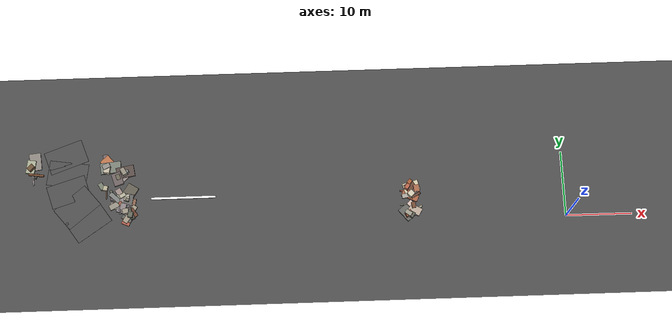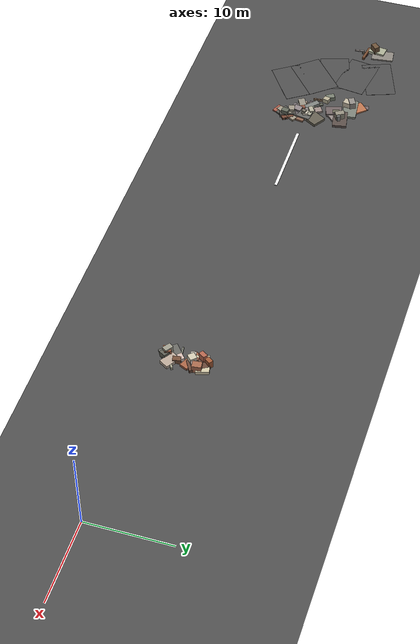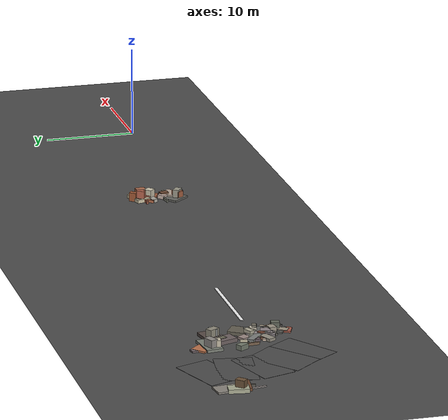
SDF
<sdf version="1.6">
 <world name="navitas_arena">
  <model name="ground_plane">
   <static>true</static>
   <link name="link">
    <collision name="collision">
     <geometry><plane><normal>0 0 1</normal><size>400 400</size></plane></geometry>
     <surface><friction><ode><mu>0.800</mu><mu2>0.800</mu2></ode></friction></surface>
    </collision>
    <visual name="visual">
     <cast_shadows>false</cast_shadows>
     <geometry><plane><normal>0 0 1</normal><size>400 400</size></plane></geometry>
     <material>
      <specular>0.04 0.04 0.04 1</specular>
      <script>
       <uri>file://media/materials/scripts/navitas_asphalt.material</uri>
       <name>Navitas/RealArenaAsphalt</name>
      </script>
     </material>
    </visual>
   </link>
  </model>
  <model name="landing_border_n">
   <static>true</static>
   <pose>-58.000 4.700 0.080 0 0 0.000</pose>
   <link name="link">
    <collision name="col"><geometry><box><size>9.800 0.350 0.080</size></box></geometry></collision>
    <visual name="vis">
     <geometry><box><size>9.800 0.350 0.080</size></box></geometry>
     <material>
      <ambient>0.95 0.95 0.95 1</ambient>
      <diffuse>0.95 0.95 0.95 1</diffuse>
      <specular>0.04 0.04 0.04 1</specular>
     </material>
    </visual>
   </link>
  </model>
  <model name="road_kolay_3_13">
   <static>true</static>
   <pose>-72.366 1.333 0.040 0 0 2.175</pose>
   <link name="link">
    <collision name="col"><geometry><box><size>3.736 6.000 0.020</size></box></geometry></collision>
    <visual name="vis">
     <geometry><box><size>3.736 6.000 0.020</size></box></geometry>
     <material>
      <specular>0.04 0.04 0.04 1</specular>
      <script>
       <uri>file://media/materials/scripts/navitas_asphalt.material</uri>
       <name>Navitas/RealArenaAsphalt</name>
      </script>
     </material>
    </visual>
   </link>
  </model>
  <model name="road_kolay_3_14">
   <static>true</static>
   <pose>-74.146 3.667 0.040 0 0 2.267</pose>
   <link name="link">
    <collision name="col"><geometry><box><size>3.940 6.000 0.020</size></box></geometry></collision>
    <visual name="vis">
     <geometry><box><size>3.940 6.000 0.020</size></box></geometry>
     <material>
      <specular>0.04 0.04 0.04 1</specular>
      <script>
       <uri>file://media/materials/scripts/navitas_asphalt.material</uri>
       <name>Navitas/RealArenaAsphalt</name>
      </script>
     </material>
    </visual>
   </link>
  </model>
  <model name="road_kolay_3_15">
   <static>true</static>
   <pose>-75.534 6.137 0.040 0 0 1.878</pose>
   <link name="link">
    <collision name="col"><geometry><box><size>3.635 6.000 0.020</size></box></geometry></collision>
    <visual name="vis">
     <geometry><box><size>3.635 6.000 0.020</size></box></geometry>
     <material>
      <specular>0.04 0.04 0.04 1</specular>
      <script>
       <uri>file://media/materials/scripts/navitas_asphalt.material</uri>
       <name>Navitas/RealArenaAsphalt</name>
      </script>
     </material>
    </visual>
   </link>
  </model>
  <model name="road_kolay_3_16">
   <static>true</static>
   <pose>-75.733 8.910 0.040 0 0 1.426</pose>
   <link name="link">
    <collision name="col"><geometry><box><size>3.871 6.000 0.020</size></box></geometry></collision>
    <visual name="vis">
     <geometry><box><size>3.871 6.000 0.020</size></box></geometry>
     <material>
      <specular>0.04 0.04 0.04 1</specular>
      <script>
       <uri>file://media/materials/scripts/navitas_asphalt.material</uri>
       <name>Navitas/RealArenaAsphalt</name>
      </script>
     </material>
    </visual>
   </link>
  </model>
  <model name="road_kolay_3_17">
   <static>true</static>
   <pose>-75.998 11.690 0.040 0 0 1.921</pose>
   <link name="link">
    <collision name="col"><geometry><box><size>3.689 6.000 0.020</size></box></geometry></collision>
    <visual name="vis">
     <geometry><box><size>3.689 6.000 0.020</size></box></geometry>
     <material>
      <specular>0.04 0.04 0.04 1</specular>
      <script>
       <uri>file://media/materials/scripts/navitas_asphalt.material</uri>
       <name>Navitas/RealArenaAsphalt</name>
      </script>
     </material>
    </visual>
   </link>
  </model>
  <model name="deb_kolay_4">
   <static>true</static>
   <pose>-69.716 10.018 0.000 0 0 0</pose>
   <link name="link">
    <collision name="col_0">
     <pose>0.603 -0.267 0.147 0.000 0.000 0.111</pose>
     <geometry><box><size>3.118 1.727 0.293</size></box></geometry>
    </collision>
    <visual name="vis_0">
     <pose>0.603 -0.267 0.147 0.000 0.000 0.111</pose>
     <geometry><box><size>3.118 1.727 0.293</size></box></geometry>
     <material>
      <ambient>0.44 0.47 0.42 1</ambient>
      <diffuse>0.48 0.50 0.46 1</diffuse>
      <specular>0.05 0.05 0.045 1</specular>
     </material>
    </visual>
    <collision name="col_1">
     <pose>-0.084 0.573 0.085 0.000 0.000 1.760</pose>
     <geometry><box><size>2.648 0.722 0.170</size></box></geometry>
    </collision>
    <visual name="vis_1">
     <pose>-0.084 0.573 0.085 0.000 0.000 1.760</pose>
     <geometry><box><size>2.648 0.722 0.170</size></box></geometry>
     <material>
      <ambient>0.41 0.36 0.37 1</ambient>
      <diffuse>0.44 0.39 0.40 1</diffuse>
      <specular>0.05 0.05 0.045 1</specular>
     </material>
    </visual>
    <collision name="col_2">
     <pose>0.094 -0.732 0.476 0.000 0.000 1.403</pose>
     <geometry><box><size>0.981 0.908 0.953</size></box></geometry>
    </collision>
    <visual name="vis_2">
     <pose>0.094 -0.732 0.476 0.000 0.000 1.403</pose>
     <geometry><box><size>0.981 0.908 0.953</size></box></geometry>
     <material>
      <ambient>0.69 0.66 0.58 1</ambient>
      <diffuse>0.75 0.71 0.63 1</diffuse>
      <specular>0.05 0.05 0.045 1</specular>
     </material>
    </visual>
    <collision name="col_3">
     <pose>0.035 -0.224 0.551 0.000 0.000 0.448</pose>
     <geometry><box><size>1.141 0.742 1.102</size></box></geometry>
    </collision>
    <visual name="vis_3">
     <pose>0.035 -0.224 0.551 0.000 0.000 0.448</pose>
     <geometry><box><size>1.141 0.742 1.102</size></box></geometry>
     <material>
      <ambient>0.52 0.50 0.48 1</ambient>
      <diffuse>0.56 0.54 0.52 1</diffuse>
      <specular>0.05 0.05 0.045 1</specular>
     </material>
    </visual>
    <collision name="col_4">
     <pose>0.040 0.656 0.092 0.000 0.000 0.731</pose>
     <geometry><box><size>1.611 1.572 0.185</size></box></geometry>
    </collision>
    <visual name="vis_4">
     <pose>0.040 0.656 0.092 0.000 0.000 0.731</pose>
     <geometry><box><size>1.611 1.572 0.185</size></box></geometry>
     <material>
      <ambient>0.67 0.42 0.28 1</ambient>
      <diffuse>0.73 0.45 0.30 1</diffuse>
      <specular>0.05 0.05 0.045 1</specular>
     </material>
    </visual>
   </link>
  </model>
  <model name="deb_kolay_11">
   <static>true</static>
   <pose>-69.883 6.349 0.000 0 0 0</pose>
   <link name="link">
    <collision name="col_0">
     <pose>0.881 -0.354 0.084 0.000 0.000 0.562</pose>
     <geometry><box><size>0.395 0.433 0.168</size></box></geometry>
    </collision>
    <visual name="vis_0">
     <pose>0.881 -0.354 0.084 0.000 0.000 0.562</pose>
     <geometry><box><size>0.395 0.433 0.168</size></box></geometry>
     <material>
      <ambient>0.34 0.35 0.31 1</ambient>
      <diffuse>0.37 0.38 0.33 1</diffuse>
      <specular>0.05 0.05 0.045 1</specular>
     </material>
    </visual>
    <collision name="col_1">
     <pose>0.043 0.121 0.295 0.000 0.000 1.317</pose>
     <geometry><box><size>0.730 0.661 0.590</size></box></geometry>
    </collision>
    <visual name="vis_1">
     <pose>0.043 0.121 0.295 0.000 0.000 1.317</pose>
     <geometry><box><size>0.730 0.661 0.590</size></box></geometry>
     <material>
      <ambient>0.65 0.62 0.53 1</ambient>
      <diffuse>0.70 0.67 0.57 1</diffuse>
      <specular>0.05 0.05 0.045 1</specular>
     </material>
    </visual>
    <collision name="col_2">
     <pose>-0.575 0.443 0.264 0.000 0.000 2.103</pose>
     <geometry><box><size>1.056 0.717 0.528</size></box></geometry>
    </collision>
    <visual name="vis_2">
     <pose>-0.575 0.443 0.264 0.000 0.000 2.103</pose>
     <geometry><box><size>1.056 0.717 0.528</size></box></geometry>
     <material>
      <ambient>0.43 0.45 0.39 1</ambient>
      <diffuse>0.46 0.49 0.43 1</diffuse>
      <specular>0.05 0.05 0.045 1</specular>
     </material>
    </visual>
    <collision name="col_3">
     <pose>0.129 -0.584 0.148 0.000 0.000 1.647</pose>
     <geometry><box><size>1.867 0.154 0.296</size></box></geometry>
    </collision>
    <visual name="vis_3">
     <pose>0.129 -0.584 0.148 0.000 0.000 1.647</pose>
     <geometry><box><size>1.867 0.154 0.296</size></box></geometry>
     <material>
      <ambient>0.44 0.36 0.28 1</ambient>
      <diffuse>0.47 0.38 0.30 1</diffuse>
      <specular>0.05 0.05 0.045 1</specular>
     </material>
    </visual>
   </link>
  </model>
  <model name="deb_kolay_35">
   <static>true</static>
   <pose>-67.642 5.034 0.000 0 0 0</pose>
   <link name="link">
    <collision name="col_0">
     <pose>1.045 -0.105 0.263 0.000 0.000 1.454</pose>
     <geometry><box><size>1.021 0.797 0.525</size></box></geometry>
    </collision>
    <visual name="vis_0">
     <pose>1.045 -0.105 0.263 0.000 0.000 1.454</pose>
     <geometry><box><size>1.021 0.797 0.525</size></box></geometry>
     <material>
      <ambient>0.61 0.60 0.54 1</ambient>
      <diffuse>0.66 0.65 0.58 1</diffuse>
      <specular>0.05 0.05 0.045 1</specular>
     </material>
    </visual>
    <collision name="col_1">
     <pose>0.380 -0.092 0.130 0.000 0.000 2.094</pose>
     <geometry><box><size>3.156 0.882 0.260</size></box></geometry>
    </collision>
    <visual name="vis_1">
     <pose>0.380 -0.092 0.130 0.000 0.000 2.094</pose>
     <geometry><box><size>3.156 0.882 0.260</size></box></geometry>
     <material>
      <ambient>0.56 0.50 0.48 1</ambient>
      <diffuse>0.61 0.54 0.52 1</diffuse>
      <specular>0.05 0.05 0.045 1</specular>
     </material>
    </visual>
    <collision name="col_2">
     <pose>-0.669 -0.147 0.192 0.000 0.000 2.404</pose>
     <geometry><box><size>2.144 0.695 0.383</size></box></geometry>
    </collision>
    <visual name="vis_2">
     <pose>-0.669 -0.147 0.192 0.000 0.000 2.404</pose>
     <geometry><box><size>2.144 0.695 0.383</size></box></geometry>
     <material>
      <ambient>0.46 0.46 0.45 1</ambient>
      <diffuse>0.49 0.50 0.49 1</diffuse>
      <specular>0.05 0.05 0.045 1</specular>
     </material>
    </visual>
    <collision name="col_3">
     <pose>-0.648 -0.744 0.145 0.000 0.000 0.755</pose>
     <geometry><box><size>1.166 0.281 0.291</size></box></geometry>
    </collision>
    <visual name="vis_3">
     <pose>-0.648 -0.744 0.145 0.000 0.000 0.755</pose>
     <geometry><box><size>1.166 0.281 0.291</size></box></geometry>
     <material>
      <ambient>0.46 0.33 0.25 1</ambient>
      <diffuse>0.50 0.35 0.27 1</diffuse>
      <specular>0.05 0.05 0.045 1</specular>
     </material>
    </visual>
    <collision name="col_4">
     <pose>-0.051 -0.750 0.153 0.000 0.000 2.352</pose>
     <geometry><box><size>0.211 0.249 0.307</size></box></geometry>
    </collision>
    <visual name="vis_4">
     <pose>-0.051 -0.750 0.153 0.000 0.000 2.352</pose>
     <geometry><box><size>0.211 0.249 0.307</size></box></geometry>
     <material>
      <ambient>0.52 0.51 0.47 1</ambient>
      <diffuse>0.56 0.55 0.51 1</diffuse>
      <specular>0.05 0.05 0.045 1</specular>
     </material>
    </visual>
    <collision name="col_5">
     <pose>0.464 0.165 0.354 0.000 0.000 0.512</pose>
     <geometry><box><size>0.954 0.551 0.708</size></box></geometry>
    </collision>
    <visual name="vis_5">
     <pose>0.464 0.165 0.354 0.000 0.000 0.512</pose>
     <geometry><box><size>0.954 0.551 0.708</size></box></geometry>
     <material>
      <ambient>0.64 0.63 0.55 1</ambient>
      <diffuse>0.70 0.68 0.60 1</diffuse>
      <specular>0.05 0.05 0.045 1</specular>
     </material>
    </visual>
   </link>
  </model>
  <model name="deb_kolay_45">
   <static>true</static>
   <pose>-81.275 10.694 0.000 0 0 0</pose>
   <link name="link">
    <collision name="col_0">
     <pose>-0.034 -0.451 0.203 0.000 0.000 1.432</pose>
     <geometry><box><size>2.068 1.308 0.407</size></box></geometry>
    </collision>
    <visual name="vis_0">
     <pose>-0.034 -0.451 0.203 0.000 0.000 1.432</pose>
     <geometry><box><size>2.068 1.308 0.407</size></box></geometry>
     <material>
      <ambient>0.61 0.62 0.53 1</ambient>
      <diffuse>0.66 0.67 0.57 1</diffuse>
      <specular>0.05 0.05 0.045 1</specular>
     </material>
    </visual>
    <collision name="col_1">
     <pose>-0.039 -0.198 0.112 0.000 0.000 3.388</pose>
     <geometry><box><size>0.448 0.173 0.225</size></box></geometry>
    </collision>
    <visual name="vis_1">
     <pose>-0.039 -0.198 0.112 0.000 0.000 3.388</pose>
     <geometry><box><size>0.448 0.173 0.225</size></box></geometry>
     <material>
      <ambient>0.65 0.38 0.26 1</ambient>
      <diffuse>0.70 0.41 0.28 1</diffuse>
      <specular>0.05 0.05 0.045 1</specular>
     </material>
    </visual>
    <collision name="col_2">
     <pose>0.090 -0.763 0.578 0.000 0.000 2.367</pose>
     <geometry><box><size>0.718 0.993 1.157</size></box></geometry>
    </collision>
    <visual name="vis_2">
     <pose>0.090 -0.763 0.578 0.000 0.000 2.367</pose>
     <geometry><box><size>0.718 0.993 1.157</size></box></geometry>
     <material>
      <ambient>0.39 0.30 0.20 1</ambient>
      <diffuse>0.42 0.32 0.22 1</diffuse>
      <specular>0.05 0.05 0.045 1</specular>
     </material>
    </visual>
    <collision name="col_3">
     <pose>0.582 0.378 0.089 0.000 0.000 1.688</pose>
     <geometry><box><size>2.729 1.755 0.177</size></box></geometry>
    </collision>
    <visual name="vis_3">
     <pose>0.582 0.378 0.089 0.000 0.000 1.688</pose>
     <geometry><box><size>2.729 1.755 0.177</size></box></geometry>
     <material>
      <ambient>0.50 0.48 0.46 1</ambient>
      <diffuse>0.54 0.52 0.49 1</diffuse>
      <specular>0.05 0.05 0.045 1</specular>
     </material>
    </visual>
    <collision name="col_4">
     <pose>0.379 -0.234 0.142 0.000 0.000 1.449</pose>
     <geometry><box><size>0.317 0.171 0.283</size></box></geometry>
    </collision>
    <visual name="vis_4">
     <pose>0.379 -0.234 0.142 0.000 0.000 1.449</pose>
     <geometry><box><size>0.317 0.171 0.283</size></box></geometry>
     <material>
      <ambient>0.31 0.28 0.27 1</ambient>
      <diffuse>0.33 0.31 0.29 1</diffuse>
      <specular>0.05 0.05 0.045 1</specular>
     </material>
    </visual>
    <collision name="col_5">
     <pose>-0.071 -0.702 0.116 0.000 0.000 0.861</pose>
     <geometry><box><size>0.483 0.188 0.232</size></box></geometry>
    </collision>
    <visual name="vis_5">
     <pose>-0.071 -0.702 0.116 0.000 0.000 0.861</pose>
     <geometry><box><size>0.483 0.188 0.232</size></box></geometry>
     <material>
      <ambient>0.61 0.37 0.25 1</ambient>
      <diffuse>0.66 0.40 0.27 1</diffuse>
      <specular>0.05 0.05 0.045 1</specular>
     </material>
    </visual>
   </link>
  </model>
  <model name="deb_kolay_80">
   <static>true</static>
   <pose>-68.226 4.597 0.000 0 0 0</pose>
   <link name="link">
    <collision name="col_0">
     <pose>-0.559 -0.534 0.121 0.000 0.000 2.882</pose>
     <geometry><box><size>0.340 0.316 0.242</size></box></geometry>
    </collision>
    <visual name="vis_0">
     <pose>-0.559 -0.534 0.121 0.000 0.000 2.882</pose>
     <geometry><box><size>0.340 0.316 0.242</size></box></geometry>
     <material>
      <ambient>0.74 0.67 0.60 1</ambient>
      <diffuse>0.80 0.72 0.65 1</diffuse>
      <specular>0.05 0.05 0.045 1</specular>
     </material>
    </visual>
    <collision name="col_1">
     <pose>0.769 -0.065 0.190 0.000 0.000 2.674</pose>
     <geometry><box><size>1.890 1.156 0.379</size></box></geometry>
    </collision>
    <visual name="vis_1">
     <pose>0.769 -0.065 0.190 0.000 0.000 2.674</pose>
     <geometry><box><size>1.890 1.156 0.379</size></box></geometry>
     <material>
      <ambient>0.50 0.51 0.46 1</ambient>
      <diffuse>0.54 0.55 0.49 1</diffuse>
      <specular>0.05 0.05 0.045 1</specular>
     </material>
    </visual>
    <collision name="col_2">
     <pose>0.422 -0.562 0.161 0.000 0.000 3.612</pose>
     <geometry><box><size>3.061 0.831 0.321</size></box></geometry>
    </collision>
    <visual name="vis_2">
     <pose>0.422 -0.562 0.161 0.000 0.000 3.612</pose>
     <geometry><box><size>3.061 0.831 0.321</size></box></geometry>
     <material>
      <ambient>0.54 0.52 0.47 1</ambient>
      <diffuse>0.58 0.56 0.51 1</diffuse>
      <specular>0.05 0.05 0.045 1</specular>
     </material>
    </visual>
    <collision name="col_3">
     <pose>0.502 0.212 0.166 0.000 0.000 3.066</pose>
     <geometry><box><size>2.629 0.723 0.333</size></box></geometry>
    </collision>
    <visual name="vis_3">
     <pose>0.502 0.212 0.166 0.000 0.000 3.066</pose>
     <geometry><box><size>2.629 0.723 0.333</size></box></geometry>
     <material>
      <ambient>0.36 0.31 0.33 1</ambient>
      <diffuse>0.39 0.34 0.36 1</diffuse>
      <specular>0.05 0.05 0.045 1</specular>
     </material>
    </visual>
    <collision name="col_4">
     <pose>-0.199 -0.501 0.079 0.000 0.000 2.362</pose>
     <geometry><box><size>0.231 0.197 0.158</size></box></geometry>
    </collision>
    <visual name="vis_4">
     <pose>-0.199 -0.501 0.079 0.000 0.000 2.362</pose>
     <geometry><box><size>0.231 0.197 0.158</size></box></geometry>
     <material>
      <ambient>0.72 0.65 0.60 1</ambient>
      <diffuse>0.78 0.70 0.65 1</diffuse>
      <specular>0.05 0.05 0.045 1</specular>
     </material>
    </visual>
    <collision name="col_5">
     <pose>0.858 -0.370 0.153 0.000 0.000 2.899</pose>
     <geometry><box><size>0.352 0.319 0.306</size></box></geometry>
    </collision>
    <visual name="vis_5">
     <pose>0.858 -0.370 0.153 0.000 0.000 2.899</pose>
     <geometry><box><size>0.352 0.319 0.306</size></box></geometry>
     <material>
      <ambient>0.44 0.43 0.43 1</ambient>
      <diffuse>0.48 0.47 0.46 1</diffuse>
      <specular>0.05 0.05 0.045 1</specular>
     </material>
    </visual>
   </link>
  </model>
  <model name="deb_kolay_83">
   <static>true</static>
   <pose>-66.130 1.631 0.000 0 0 0</pose>
   <link name="link">
    <collision name="col_0">
     <pose>-0.219 0.160 0.085 0.000 0.000 1.167</pose>
     <geometry><box><size>2.376 1.264 0.170</size></box></geometry>
    </collision>
    <visual name="vis_0">
     <pose>-0.219 0.160 0.085 0.000 0.000 1.167</pose>
     <geometry><box><size>2.376 1.264 0.170</size></box></geometry>
     <material>
      <ambient>0.61 0.34 0.27 1</ambient>
      <diffuse>0.66 0.36 0.29 1</diffuse>
      <specular>0.05 0.05 0.045 1</specular>
     </material>
    </visual>
    <collision name="col_1">
     <pose>0.050 0.714 0.122 0.000 0.000 1.001</pose>
     <geometry><box><size>2.991 0.767 0.244</size></box></geometry>
    </collision>
    <visual name="vis_1">
     <pose>0.050 0.714 0.122 0.000 0.000 1.001</pose>
     <geometry><box><size>2.991 0.767 0.244</size></box></geometry>
     <material>
      <ambient>0.57 0.54 0.47 1</ambient>
      <diffuse>0.62 0.58 0.51 1</diffuse>
      <specular>0.05 0.05 0.045 1</specular>
     </material>
    </visual>
    <collision name="col_2">
     <pose>-0.114 0.520 0.089 0.000 0.000 1.006</pose>
     <geometry><box><size>1.839 1.673 0.179</size></box></geometry>
    </collision>
    <visual name="vis_2">
     <pose>-0.114 0.520 0.089 0.000 0.000 1.006</pose>
     <geometry><box><size>1.839 1.673 0.179</size></box></geometry>
     <material>
      <ambient>0.34 0.34 0.32 1</ambient>
      <diffuse>0.37 0.37 0.35 1</diffuse>
      <specular>0.05 0.05 0.045 1</specular>
     </material>
    </visual>
    <collision name="col_3">
     <pose>0.169 0.531 0.420 0.000 0.000 1.391</pose>
     <geometry><box><size>0.859 0.712 0.840</size></box></geometry>
    </collision>
    <visual name="vis_3">
     <pose>0.169 0.531 0.420 0.000 0.000 1.391</pose>
     <geometry><box><size>0.859 0.712 0.840</size></box></geometry>
     <material>
      <ambient>0.35 0.37 0.33 1</ambient>
      <diffuse>0.38 0.40 0.35 1</diffuse>
      <specular>0.05 0.05 0.045 1</specular>
     </material>
    </visual>
    <collision name="col_4">
     <pose>-0.306 0.485 0.110 0.000 0.000 2.636</pose>
     <geometry><box><size>1.419 0.285 0.220</size></box></geometry>
    </collision>
    <visual name="vis_4">
     <pose>-0.306 0.485 0.110 0.000 0.000 2.636</pose>
     <geometry><box><size>1.419 0.285 0.220</size></box></geometry>
     <material>
      <ambient>0.38 0.38 0.37 1</ambient>
      <diffuse>0.41 0.42 0.40 1</diffuse>
      <specular>0.05 0.05 0.045 1</specular>
     </material>
    </visual>
    <collision name="col_5">
     <pose>0.165 0.816 0.199 0.000 0.000 1.971</pose>
     <geometry><box><size>2.013 0.653 0.397</size></box></geometry>
    </collision>
    <visual name="vis_5">
     <pose>0.165 0.816 0.199 0.000 0.000 1.971</pose>
     <geometry><box><size>2.013 0.653 0.397</size></box></geometry>
     <material>
      <ambient>0.28 0.27 0.25 1</ambient>
      <diffuse>0.30 0.29 0.27 1</diffuse>
      <specular>0.05 0.05 0.045 1</specular>
     </material>
    </visual>
   </link>
  </model>
  <model name="deb_kolay_109">
   <static>true</static>
   <pose>-66.497 4.869 0.000 0 0 0</pose>
   <link name="link">
    <collision name="col_0">
     <pose>0.081 -0.403 0.459 0.000 0.000 1.261</pose>
     <geometry><box><size>0.483 0.446 0.919</size></box></geometry>
    </collision>
    <visual name="vis_0">
     <pose>0.081 -0.403 0.459 0.000 0.000 1.261</pose>
     <geometry><box><size>0.483 0.446 0.919</size></box></geometry>
     <material>
      <ambient>0.44 0.42 0.37 1</ambient>
      <diffuse>0.47 0.45 0.40 1</diffuse>
      <specular>0.05 0.05 0.045 1</specular>
     </material>
    </visual>
    <collision name="col_1">
     <pose>0.026 -0.227 0.334 0.000 0.000 1.727</pose>
     <geometry><box><size>0.627 0.661 0.669</size></box></geometry>
    </collision>
    <visual name="vis_1">
     <pose>0.026 -0.227 0.334 0.000 0.000 1.727</pose>
     <geometry><box><size>0.627 0.661 0.669</size></box></geometry>
     <material>
      <ambient>0.73 0.70 0.63 1</ambient>
      <diffuse>0.79 0.76 0.69 1</diffuse>
      <specular>0.05 0.05 0.045 1</specular>
     </material>
    </visual>
    <collision name="col_2">
     <pose>0.302 0.797 0.177 0.000 0.000 1.015</pose>
     <geometry><box><size>2.523 1.793 0.353</size></box></geometry>
    </collision>
    <visual name="vis_2">
     <pose>0.302 0.797 0.177 0.000 0.000 1.015</pose>
     <geometry><box><size>2.523 1.793 0.353</size></box></geometry>
     <material>
      <ambient>0.36 0.34 0.30 1</ambient>
      <diffuse>0.39 0.37 0.32 1</diffuse>
      <specular>0.05 0.05 0.045 1</specular>
     </material>
    </visual>
    <collision name="col_3">
     <pose>-0.329 -0.719 0.192 0.000 0.000 1.467</pose>
     <geometry><box><size>2.709 1.691 0.385</size></box></geometry>
    </collision>
    <visual name="vis_3">
     <pose>-0.329 -0.719 0.192 0.000 0.000 1.467</pose>
     <geometry><box><size>2.709 1.691 0.385</size></box></geometry>
     <material>
      <ambient>0.52 0.49 0.49 1</ambient>
      <diffuse>0.56 0.53 0.53 1</diffuse>
      <specular>0.05 0.05 0.045 1</specular>
     </material>
    </visual>
    <collision name="col_4">
     <pose>-0.439 0.081 0.129 0.000 0.000 0.830</pose>
     <geometry><box><size>2.571 0.922 0.259</size></box></geometry>
    </collision>
    <visual name="vis_4">
     <pose>-0.439 0.081 0.129 0.000 0.000 0.830</pose>
     <geometry><box><size>2.571 0.922 0.259</size></box></geometry>
     <material>
      <ambient>0.39 0.29 0.21 1</ambient>
      <diffuse>0.43 0.31 0.22 1</diffuse>
      <specular>0.05 0.05 0.045 1</specular>
     </material>
    </visual>
    <collision name="col_5">
     <pose>0.554 -0.537 0.112 0.000 0.000 0.234</pose>
     <geometry><box><size>0.345 0.386 0.223</size></box></geometry>
    </collision>
    <visual name="vis_5">
     <pose>0.554 -0.537 0.112 0.000 0.000 0.234</pose>
     <geometry><box><size>0.345 0.386 0.223</size></box></geometry>
     <material>
      <ambient>0.45 0.45 0.44 1</ambient>
      <diffuse>0.48 0.48 0.47 1</diffuse>
      <specular>0.05 0.05 0.045 1</specular>
     </material>
    </visual>
    <collision name="col_6">
     <pose>0.013 -0.249 0.074 0.000 0.000 1.788</pose>
     <geometry><box><size>1.033 0.271 0.148</size></box></geometry>
    </collision>
    <visual name="vis_6">
     <pose>0.013 -0.249 0.074 0.000 0.000 1.788</pose>
     <geometry><box><size>1.033 0.271 0.148</size></box></geometry>
     <material>
      <ambient>0.75 0.73 0.64 1</ambient>
      <diffuse>0.80 0.79 0.69 1</diffuse>
      <specular>0.05 0.05 0.045 1</specular>
     </material>
    </visual>
   </link>
  </model>
  <model name="deb_kolay_115">
   <static>true</static>
   <pose>-80.129 7.894 0.000 0 0 0</pose>
   <link name="link">
    <collision name="col_0">
     <pose>-0.101 1.081 0.079 0.000 0.000 1.300</pose>
     <geometry><box><size>0.365 0.366 0.159</size></box></geometry>
    </collision>
    <visual name="vis_0">
     <pose>-0.101 1.081 0.079 0.000 0.000 1.300</pose>
     <geometry><box><size>0.365 0.366 0.159</size></box></geometry>
     <material>
      <ambient>0.41 0.26 0.23 1</ambient>
      <diffuse>0.44 0.28 0.25 1</diffuse>
      <specular>0.05 0.05 0.045 1</specular>
     </material>
    </visual>
    <collision name="col_1">
     <pose>-0.399 0.698 0.141 0.000 0.000 1.487</pose>
     <geometry><box><size>0.464 0.184 0.281</size></box></geometry>
    </collision>
    <visual name="vis_1">
     <pose>-0.399 0.698 0.141 0.000 0.000 1.487</pose>
     <geometry><box><size>0.464 0.184 0.281</size></box></geometry>
     <material>
      <ambient>0.31 0.30 0.28 1</ambient>
      <diffuse>0.34 0.33 0.30 1</diffuse>
      <specular>0.05 0.05 0.045 1</specular>
     </material>
    </visual>
    <collision name="col_2">
     <pose>-0.858 0.574 0.064 0.000 0.000 1.682</pose>
     <geometry><box><size>2.276 0.190 0.128</size></box></geometry>
    </collision>
    <visual name="vis_2">
     <pose>-0.858 0.574 0.064 0.000 0.000 1.682</pose>
     <geometry><box><size>2.276 0.190 0.128</size></box></geometry>
     <material>
      <ambient>0.54 0.51 0.50 1</ambient>
      <diffuse>0.58 0.55 0.54 1</diffuse>
      <specular>0.05 0.05 0.045 1</specular>
     </material>
    </visual>
    <collision name="col_3">
     <pose>-0.364 1.061 0.153 0.000 0.000 -0.136</pose>
     <geometry><box><size>2.303 0.316 0.306</size></box></geometry>
    </collision>
    <visual name="vis_3">
     <pose>-0.364 1.061 0.153 0.000 0.000 -0.136</pose>
     <geometry><box><size>2.303 0.316 0.306</size></box></geometry>
     <material>
      <ambient>0.41 0.26 0.17 1</ambient>
      <diffuse>0.44 0.28 0.18 1</diffuse>
      <specular>0.05 0.05 0.045 1</specular>
     </material>
    </visual>
   </link>
  </model>
  <model name="deb_kolay_160">
   <static>true</static>
   <pose>-66.598 2.521 0.000 0 0 0</pose>
   <link name="link">
    <collision name="col_0">
     <pose>-0.560 0.940 0.251 0.000 0.000 0.337</pose>
     <geometry><box><size>0.752 0.691 0.501</size></box></geometry>
    </collision>
    <visual name="vis_0">
     <pose>-0.560 0.940 0.251 0.000 0.000 0.337</pose>
     <geometry><box><size>0.752 0.691 0.501</size></box></geometry>
     <material>
      <ambient>0.46 0.48 0.45 1</ambient>
      <diffuse>0.49 0.51 0.48 1</diffuse>
      <specular>0.05 0.05 0.045 1</specular>
     </material>
    </visual>
    <collision name="col_1">
     <pose>-0.132 0.234 0.347 0.000 0.000 0.173</pose>
     <geometry><box><size>0.901 0.760 0.694</size></box></geometry>
    </collision>
    <visual name="vis_1">
     <pose>-0.132 0.234 0.347 0.000 0.000 0.173</pose>
     <geometry><box><size>0.901 0.760 0.694</size></box></geometry>
     <material>
      <ambient>0.56 0.54 0.48 1</ambient>
      <diffuse>0.61 0.58 0.52 1</diffuse>
      <specular>0.05 0.05 0.045 1</specular>
     </material>
    </visual>
    <collision name="col_2">
     <pose>0.862 -0.093 0.139 0.000 0.000 2.160</pose>
     <geometry><box><size>1.475 1.119 0.278</size></box></geometry>
    </collision>
    <visual name="vis_2">
     <pose>0.862 -0.093 0.139 0.000 0.000 2.160</pose>
     <geometry><box><size>1.475 1.119 0.278</size></box></geometry>
     <material>
      <ambient>0.40 0.25 0.18 1</ambient>
      <diffuse>0.44 0.27 0.20 1</diffuse>
      <specular>0.05 0.05 0.045 1</specular>
     </material>
    </visual>
    <collision name="col_3">
     <pose>-0.995 -0.010 0.094 0.000 0.000 1.557</pose>
     <geometry><box><size>0.204 0.325 0.188</size></box></geometry>
    </collision>
    <visual name="vis_3">
     <pose>-0.995 -0.010 0.094 0.000 0.000 1.557</pose>
     <geometry><box><size>0.204 0.325 0.188</size></box></geometry>
     <material>
      <ambient>0.37 0.36 0.33 1</ambient>
      <diffuse>0.40 0.39 0.36 1</diffuse>
      <specular>0.05 0.05 0.045 1</specular>
     </material>
    </visual>
    <collision name="col_4">
     <pose>0.684 -0.065 0.144 0.000 0.000 0.265</pose>
     <geometry><box><size>1.246 0.190 0.289</size></box></geometry>
    </collision>
    <visual name="vis_4">
     <pose>0.684 -0.065 0.144 0.000 0.000 0.265</pose>
     <geometry><box><size>1.246 0.190 0.289</size></box></geometry>
     <material>
      <ambient>0.47 0.33 0.25 1</ambient>
      <diffuse>0.51 0.36 0.27 1</diffuse>
      <specular>0.05 0.05 0.045 1</specular>
     </material>
    </visual>
    <collision name="col_5">
     <pose>0.402 0.088 0.203 0.000 0.000 1.743</pose>
     <geometry><box><size>0.599 0.615 0.406</size></box></geometry>
    </collision>
    <visual name="vis_5">
     <pose>0.402 0.088 0.203 0.000 0.000 1.743</pose>
     <geometry><box><size>0.599 0.615 0.406</size></box></geometry>
     <material>
      <ambient>0.55 0.53 0.47 1</ambient>
      <diffuse>0.59 0.57 0.50 1</diffuse>
      <specular>0.05 0.05 0.045 1</specular>
     </material>
    </visual>
   </link>
  </model>
  <model name="deb_kolay_172">
   <static>true</static>
   <pose>-66.301 3.476 0.000 0 0 0</pose>
   <link name="link">
    <collision name="col_0">
     <pose>-0.013 -0.074 0.082 0.000 0.000 2.166</pose>
     <geometry><box><size>1.679 0.303 0.163</size></box></geometry>
    </collision>
    <visual name="vis_0">
     <pose>-0.013 -0.074 0.082 0.000 0.000 2.166</pose>
     <geometry><box><size>1.679 0.303 0.163</size></box></geometry>
     <material>
      <ambient>0.39 0.38 0.37 1</ambient>
      <diffuse>0.42 0.41 0.40 1</diffuse>
      <specular>0.05 0.05 0.045 1</specular>
     </material>
    </visual>
    <collision name="col_1">
     <pose>0.353 0.344 0.108 0.000 0.000 4.529</pose>
     <geometry><box><size>1.905 1.315 0.216</size></box></geometry>
    </collision>
    <visual name="vis_1">
     <pose>0.353 0.344 0.108 0.000 0.000 4.529</pose>
     <geometry><box><size>1.905 1.315 0.216</size></box></geometry>
     <material>
      <ambient>0.50 0.36 0.29 1</ambient>
      <diffuse>0.54 0.39 0.31 1</diffuse>
      <specular>0.05 0.05 0.045 1</specular>
     </material>
    </visual>
    <collision name="col_2">
     <pose>0.010 0.016 0.198 0.000 0.000 4.221</pose>
     <geometry><box><size>0.520 0.451 0.397</size></box></geometry>
    </collision>
    <visual name="vis_2">
     <pose>0.010 0.016 0.198 0.000 0.000 4.221</pose>
     <geometry><box><size>0.520 0.451 0.397</size></box></geometry>
     <material>
      <ambient>0.38 0.36 0.38 1</ambient>
      <diffuse>0.42 0.39 0.41 1</diffuse>
      <specular>0.05 0.05 0.045 1</specular>
     </material>
    </visual>
    <collision name="col_3">
     <pose>-0.090 0.556 0.198 0.000 0.000 4.537</pose>
     <geometry><box><size>2.838 1.300 0.395</size></box></geometry>
    </collision>
    <visual name="vis_3">
     <pose>-0.090 0.556 0.198 0.000 0.000 4.537</pose>
     <geometry><box><size>2.838 1.300 0.395</size></box></geometry>
     <material>
      <ambient>0.36 0.36 0.35 1</ambient>
      <diffuse>0.39 0.39 0.38 1</diffuse>
      <specular>0.05 0.05 0.045 1</specular>
     </material>
    </visual>
   </link>
  </model>
  <model name="deb_kolay_176">
   <static>true</static>
   <pose>-67.790 8.475 0.000 0 0 0</pose>
   <link name="link">
    <collision name="col_0">
     <pose>0.930 0.538 0.161 0.000 0.000 0.179</pose>
     <geometry><box><size>2.716 1.757 0.323</size></box></geometry>
    </collision>
    <visual name="vis_0">
     <pose>0.930 0.538 0.161 0.000 0.000 0.179</pose>
     <geometry><box><size>2.716 1.757 0.323</size></box></geometry>
     <material>
      <ambient>0.32 0.28 0.26 1</ambient>
      <diffuse>0.35 0.30 0.28 1</diffuse>
      <specular>0.05 0.05 0.045 1</specular>
     </material>
    </visual>
    <collision name="col_1">
     <pose>0.749 0.433 0.560 0.000 0.000 2.095</pose>
     <geometry><box><size>1.141 0.705 1.121</size></box></geometry>
    </collision>
    <visual name="vis_1">
     <pose>0.749 0.433 0.560 0.000 0.000 2.095</pose>
     <geometry><box><size>1.141 0.705 1.121</size></box></geometry>
     <material>
      <ambient>0.53 0.51 0.45 1</ambient>
      <diffuse>0.57 0.55 0.49 1</diffuse>
      <specular>0.05 0.05 0.045 1</specular>
     </material>
    </visual>
    <collision name="col_2">
     <pose>-0.163 -0.276 0.222 0.000 0.000 0.358</pose>
     <geometry><box><size>0.614 0.834 0.444</size></box></geometry>
    </collision>
    <visual name="vis_2">
     <pose>-0.163 -0.276 0.222 0.000 0.000 0.358</pose>
     <geometry><box><size>0.614 0.834 0.444</size></box></geometry>
     <material>
      <ambient>0.39 0.38 0.32 1</ambient>
      <diffuse>0.42 0.41 0.34 1</diffuse>
      <specular>0.05 0.05 0.045 1</specular>
     </material>
    </visual>
    <collision name="col_3">
     <pose>0.665 0.860 0.078 0.000 0.000 0.116</pose>
     <geometry><box><size>0.224 0.421 0.156</size></box></geometry>
    </collision>
    <visual name="vis_3">
     <pose>0.665 0.860 0.078 0.000 0.000 0.116</pose>
     <geometry><box><size>0.224 0.421 0.156</size></box></geometry>
     <material>
      <ambient>0.66 0.64 0.52 1</ambient>
      <diffuse>0.71 0.69 0.56 1</diffuse>
      <specular>0.05 0.05 0.045 1</specular>
     </material>
    </visual>
    <collision name="col_4">
     <pose>-0.264 -0.581 0.205 0.000 0.000 1.888</pose>
     <geometry><box><size>2.002 1.440 0.409</size></box></geometry>
    </collision>
    <visual name="vis_4">
     <pose>-0.264 -0.581 0.205 0.000 0.000 1.888</pose>
     <geometry><box><size>2.002 1.440 0.409</size></box></geometry>
     <material>
      <ambient>0.40 0.35 0.35 1</ambient>
      <diffuse>0.43 0.38 0.38 1</diffuse>
      <specular>0.05 0.05 0.045 1</specular>
     </material>
    </visual>
    <collision name="col_5">
     <pose>0.994 0.315 0.527 0.000 0.000 0.410</pose>
     <geometry><box><size>1.037 0.400 1.055</size></box></geometry>
    </collision>
    <visual name="vis_5">
     <pose>0.994 0.315 0.527 0.000 0.000 0.410</pose>
     <geometry><box><size>1.037 0.400 1.055</size></box></geometry>
     <material>
      <ambient>0.49 0.50 0.49 1</ambient>
      <diffuse>0.53 0.54 0.53 1</diffuse>
      <specular>0.05 0.05 0.045 1</specular>
     </material>
    </visual>
    <collision name="col_6">
     <pose>0.475 0.111 0.113 0.000 0.000 2.358</pose>
     <geometry><box><size>1.992 1.418 0.226</size></box></geometry>
    </collision>
    <visual name="vis_6">
     <pose>0.475 0.111 0.113 0.000 0.000 2.358</pose>
     <geometry><box><size>1.992 1.418 0.226</size></box></geometry>
     <material>
      <ambient>0.53 0.49 0.49 1</ambient>
      <diffuse>0.57 0.53 0.52 1</diffuse>
      <specular>0.05 0.05 0.045 1</specular>
     </material>
    </visual>
   </link>
  </model>
  <model name="deb_kolay_192">
   <static>true</static>
   <pose>-67.804 4.113 0.000 0 0 0</pose>
   <link name="link">
    <collision name="col_0">
     <pose>0.492 -0.337 0.092 0.000 0.000 0.989</pose>
     <geometry><box><size>2.092 1.249 0.184</size></box></geometry>
    </collision>
    <visual name="vis_0">
     <pose>0.492 -0.337 0.092 0.000 0.000 0.989</pose>
     <geometry><box><size>2.092 1.249 0.184</size></box></geometry>
     <material>
      <ambient>0.62 0.60 0.54 1</ambient>
      <diffuse>0.67 0.65 0.58 1</diffuse>
      <specular>0.05 0.05 0.045 1</specular>
     </material>
    </visual>
    <collision name="col_1">
     <pose>0.485 -0.537 0.176 0.000 0.000 1.266</pose>
     <geometry><box><size>1.937 0.140 0.351</size></box></geometry>
    </collision>
    <visual name="vis_1">
     <pose>0.485 -0.537 0.176 0.000 0.000 1.266</pose>
     <geometry><box><size>1.937 0.140 0.351</size></box></geometry>
     <material>
      <ambient>0.48 0.45 0.42 1</ambient>
      <diffuse>0.52 0.49 0.45 1</diffuse>
      <specular>0.05 0.05 0.045 1</specular>
     </material>
    </visual>
    <collision name="col_2">
     <pose>0.413 -0.473 0.156 0.000 0.000 1.265</pose>
     <geometry><box><size>2.072 1.036 0.313</size></box></geometry>
    </collision>
    <visual name="vis_2">
     <pose>0.413 -0.473 0.156 0.000 0.000 1.265</pose>
     <geometry><box><size>2.072 1.036 0.313</size></box></geometry>
     <material>
      <ambient>0.48 0.46 0.47 1</ambient>
      <diffuse>0.52 0.49 0.50 1</diffuse>
      <specular>0.05 0.05 0.045 1</specular>
     </material>
    </visual>
    <collision name="col_3">
     <pose>0.355 -0.180 0.254 0.000 0.000 0.560</pose>
     <geometry><box><size>0.548 0.753 0.509</size></box></geometry>
    </collision>
    <visual name="vis_3">
     <pose>0.355 -0.180 0.254 0.000 0.000 0.560</pose>
     <geometry><box><size>0.548 0.753 0.509</size></box></geometry>
     <material>
      <ambient>0.57 0.35 0.26 1</ambient>
      <diffuse>0.61 0.37 0.28 1</diffuse>
      <specular>0.05 0.05 0.045 1</specular>
     </material>
    </visual>
    <collision name="col_4">
     <pose>0.715 -0.633 0.281 0.000 0.000 1.333</pose>
     <geometry><box><size>1.026 0.866 0.562</size></box></geometry>
    </collision>
    <visual name="vis_4">
     <pose>0.715 -0.633 0.281 0.000 0.000 1.333</pose>
     <geometry><box><size>1.026 0.866 0.562</size></box></geometry>
     <material>
      <ambient>0.51 0.47 0.48 1</ambient>
      <diffuse>0.55 0.51 0.52 1</diffuse>
      <specular>0.05 0.05 0.045 1</specular>
     </material>
    </visual>
   </link>
  </model>
  <model name="deb_orta_98">
   <static>true</static>
   <pose>-23.528 5.035 0.000 0 0 0</pose>
   <link name="link">
    <collision name="col_0">
     <pose>0.013 0.851 0.482 0.000 0.000 2.485</pose>
     <geometry><box><size>0.562 0.760 0.964</size></box></geometry>
    </collision>
    <visual name="vis_0">
     <pose>0.013 0.851 0.482 0.000 0.000 2.485</pose>
     <geometry><box><size>0.562 0.760 0.964</size></box></geometry>
     <material>
      <ambient>0.58 0.32 0.19 1</ambient>
      <diffuse>0.63 0.35 0.21 1</diffuse>
      <specular>0.05 0.05 0.045 1</specular>
     </material>
    </visual>
    <collision name="col_1">
     <pose>-0.539 -0.595 0.076 0.000 0.000 1.305</pose>
     <geometry><box><size>0.490 0.197 0.153</size></box></geometry>
    </collision>
    <visual name="vis_1">
     <pose>-0.539 -0.595 0.076 0.000 0.000 1.305</pose>
     <geometry><box><size>0.490 0.197 0.153</size></box></geometry>
     <material>
      <ambient>0.62 0.38 0.25 1</ambient>
      <diffuse>0.67 0.41 0.27 1</diffuse>
      <specular>0.05 0.05 0.045 1</specular>
     </material>
    </visual>
    <collision name="col_2">
     <pose>-0.377 0.072 0.617 0.000 0.000 2.587</pose>
     <geometry><box><size>0.558 0.838 1.234</size></box></geometry>
    </collision>
    <visual name="vis_2">
     <pose>-0.377 0.072 0.617 0.000 0.000 2.587</pose>
     <geometry><box><size>0.558 0.838 1.234</size></box></geometry>
     <material>
      <ambient>0.65 0.36 0.28 1</ambient>
      <diffuse>0.70 0.39 0.30 1</diffuse>
      <specular>0.05 0.05 0.045 1</specular>
     </material>
    </visual>
    <collision name="col_3">
     <pose>-0.971 -0.397 0.131 0.000 0.000 3.065</pose>
     <geometry><box><size>1.013 0.222 0.261</size></box></geometry>
    </collision>
    <visual name="vis_3">
     <pose>-0.971 -0.397 0.131 0.000 0.000 3.065</pose>
     <geometry><box><size>1.013 0.222 0.261</size></box></geometry>
     <material>
      <ambient>0.55 0.32 0.24 1</ambient>
      <diffuse>0.60 0.34 0.26 1</diffuse>
      <specular>0.05 0.05 0.045 1</specular>
     </material>
    </visual>
    <collision name="col_4">
     <pose>0.050 -1.183 0.149 0.000 0.000 2.703</pose>
     <geometry><box><size>2.561 1.027 0.297</size></box></geometry>
    </collision>
    <visual name="vis_4">
     <pose>0.050 -1.183 0.149 0.000 0.000 2.703</pose>
     <geometry><box><size>2.561 1.027 0.297</size></box></geometry>
     <material>
      <ambient>0.61 0.36 0.25 1</ambient>
      <diffuse>0.66 0.39 0.27 1</diffuse>
      <specular>0.05 0.05 0.045 1</specular>
     </material>
    </visual>
   </link>
  </model>
  <model name="deb_orta_99">
   <static>true</static>
   <pose>-23.143 4.904 0.000 0 0 0</pose>
   <link name="link">
    <collision name="col_0">
     <pose>0.467 -0.473 0.457 0.000 0.000 3.658</pose>
     <geometry><box><size>0.706 0.667 0.915</size></box></geometry>
    </collision>
    <visual name="vis_0">
     <pose>0.467 -0.473 0.457 0.000 0.000 3.658</pose>
     <geometry><box><size>0.706 0.667 0.915</size></box></geometry>
     <material>
      <ambient>0.53 0.48 0.46 1</ambient>
      <diffuse>0.58 0.52 0.50 1</diffuse>
      <specular>0.05 0.05 0.045 1</specular>
     </material>
    </visual>
    <collision name="col_1">
     <pose>0.615 -0.081 0.492 0.000 0.000 1.685</pose>
     <geometry><box><size>1.072 0.846 0.985</size></box></geometry>
    </collision>
    <visual name="vis_1">
     <pose>0.615 -0.081 0.492 0.000 0.000 1.685</pose>
     <geometry><box><size>1.072 0.846 0.985</size></box></geometry>
     <material>
      <ambient>0.60 0.38 0.27 1</ambient>
      <diffuse>0.65 0.41 0.30 1</diffuse>
      <specular>0.05 0.05 0.045 1</specular>
     </material>
    </visual>
    <collision name="col_2">
     <pose>0.005 -0.127 0.200 0.000 0.000 2.105</pose>
     <geometry><box><size>2.407 1.535 0.400</size></box></geometry>
    </collision>
    <visual name="vis_2">
     <pose>0.005 -0.127 0.200 0.000 0.000 2.105</pose>
     <geometry><box><size>2.407 1.535 0.400</size></box></geometry>
     <material>
      <ambient>0.37 0.25 0.19 1</ambient>
      <diffuse>0.40 0.27 0.21 1</diffuse>
      <specular>0.05 0.05 0.045 1</specular>
     </material>
    </visual>
    <collision name="col_3">
     <pose>-0.124 0.326 0.195 0.000 0.000 3.417</pose>
     <geometry><box><size>2.411 1.534 0.391</size></box></geometry>
    </collision>
    <visual name="vis_3">
     <pose>-0.124 0.326 0.195 0.000 0.000 3.417</pose>
     <geometry><box><size>2.411 1.534 0.391</size></box></geometry>
     <material>
      <ambient>0.75 0.71 0.60 1</ambient>
      <diffuse>0.81 0.77 0.65 1</diffuse>
      <specular>0.05 0.05 0.045 1</specular>
     </material>
    </visual>
    <collision name="col_4">
     <pose>-0.250 0.205 0.136 0.000 0.000 2.198</pose>
     <geometry><box><size>1.660 0.228 0.273</size></box></geometry>
    </collision>
    <visual name="vis_4">
     <pose>-0.250 0.205 0.136 0.000 0.000 2.198</pose>
     <geometry><box><size>1.660 0.228 0.273</size></box></geometry>
     <material>
      <ambient>0.41 0.29 0.17 1</ambient>
      <diffuse>0.44 0.31 0.19 1</diffuse>
      <specular>0.05 0.05 0.045 1</specular>
     </material>
    </visual>
   </link>
  </model>
  <model name="deb_orta_129">
   <static>true</static>
   <pose>-23.289 1.406 0.000 0 0 0</pose>
   <link name="link">
    <collision name="col_0">
     <pose>0.601 0.253 0.114 0.000 0.000 2.042</pose>
     <geometry><box><size>0.230 0.478 0.228</size></box></geometry>
    </collision>
    <visual name="vis_0">
     <pose>0.601 0.253 0.114 0.000 0.000 2.042</pose>
     <geometry><box><size>0.230 0.478 0.228</size></box></geometry>
     <material>
      <ambient>0.33 0.28 0.27 1</ambient>
      <diffuse>0.36 0.30 0.29 1</diffuse>
      <specular>0.05 0.05 0.045 1</specular>
     </material>
    </visual>
    <collision name="col_1">
     <pose>0.565 0.214 0.175 0.000 0.000 3.676</pose>
     <geometry><box><size>2.226 0.248 0.350</size></box></geometry>
    </collision>
    <visual name="vis_1">
     <pose>0.565 0.214 0.175 0.000 0.000 3.676</pose>
     <geometry><box><size>2.226 0.248 0.350</size></box></geometry>
     <material>
      <ambient>0.59 0.58 0.50 1</ambient>
      <diffuse>0.64 0.63 0.54 1</diffuse>
      <specular>0.05 0.05 0.045 1</specular>
     </material>
    </visual>
    <collision name="col_2">
     <pose>0.244 0.923 0.281 0.000 0.000 3.318</pose>
     <geometry><box><size>0.612 0.919 0.562</size></box></geometry>
    </collision>
    <visual name="vis_2">
     <pose>0.244 0.923 0.281 0.000 0.000 3.318</pose>
     <geometry><box><size>0.612 0.919 0.562</size></box></geometry>
     <material>
      <ambient>0.42 0.28 0.20 1</ambient>
      <diffuse>0.45 0.30 0.21 1</diffuse>
      <specular>0.05 0.05 0.045 1</specular>
     </material>
    </visual>
    <collision name="col_3">
     <pose>-0.573 -0.422 0.434 0.000 0.000 3.609</pose>
     <geometry><box><size>0.990 0.780 0.867</size></box></geometry>
    </collision>
    <visual name="vis_3">
     <pose>-0.573 -0.422 0.434 0.000 0.000 3.609</pose>
     <geometry><box><size>0.990 0.780 0.867</size></box></geometry>
     <material>
      <ambient>0.59 0.34 0.23 1</ambient>
      <diffuse>0.63 0.37 0.25 1</diffuse>
      <specular>0.05 0.05 0.045 1</specular>
     </material>
    </visual>
    <collision name="col_4">
     <pose>-0.735 -0.150 0.106 0.000 0.000 2.255</pose>
     <geometry><box><size>2.265 1.679 0.213</size></box></geometry>
    </collision>
    <visual name="vis_4">
     <pose>-0.735 -0.150 0.106 0.000 0.000 2.255</pose>
     <geometry><box><size>2.265 1.679 0.213</size></box></geometry>
     <material>
      <ambient>0.37 0.37 0.35 1</ambient>
      <diffuse>0.40 0.40 0.38 1</diffuse>
      <specular>0.05 0.05 0.045 1</specular>
     </material>
    </visual>
    <collision name="col_5">
     <pose>-0.727 -0.405 0.141 0.000 0.000 4.141</pose>
     <geometry><box><size>0.504 0.193 0.282</size></box></geometry>
    </collision>
    <visual name="vis_5">
     <pose>-0.727 -0.405 0.141 0.000 0.000 4.141</pose>
     <geometry><box><size>0.504 0.193 0.282</size></box></geometry>
     <material>
      <ambient>0.48 0.49 0.46 1</ambient>
      <diffuse>0.52 0.53 0.50 1</diffuse>
      <specular>0.05 0.05 0.045 1</specular>
     </material>
    </visual>
   </link>
  </model>
  <model name="deb_orta_220">
   <static>true</static>
   <pose>-23.150 1.634 0.000 0 0 0</pose>
   <link name="link">
    <collision name="col_0">
     <pose>-0.278 -0.797 0.368 0.000 0.000 2.581</pose>
     <geometry><box><size>0.867 0.848 0.737</size></box></geometry>
    </collision>
    <visual name="vis_0">
     <pose>-0.278 -0.797 0.368 0.000 0.000 2.581</pose>
     <geometry><box><size>0.867 0.848 0.737</size></box></geometry>
     <material>
      <ambient>0.34 0.34 0.31 1</ambient>
      <diffuse>0.37 0.37 0.33 1</diffuse>
      <specular>0.05 0.05 0.045 1</specular>
     </material>
    </visual>
    <collision name="col_1">
     <pose>-0.060 -0.843 0.153 0.000 0.000 3.023</pose>
     <geometry><box><size>0.209 0.391 0.306</size></box></geometry>
    </collision>
    <visual name="vis_1">
     <pose>-0.060 -0.843 0.153 0.000 0.000 3.023</pose>
     <geometry><box><size>0.209 0.391 0.306</size></box></geometry>
     <material>
      <ambient>0.63 0.40 0.29 1</ambient>
      <diffuse>0.68 0.43 0.31 1</diffuse>
      <specular>0.05 0.05 0.045 1</specular>
     </material>
    </visual>
    <collision name="col_2">
     <pose>-0.731 -0.612 0.535 0.000 0.000 2.527</pose>
     <geometry><box><size>1.027 0.670 1.070</size></box></geometry>
    </collision>
    <visual name="vis_2">
     <pose>-0.731 -0.612 0.535 0.000 0.000 2.527</pose>
     <geometry><box><size>1.027 0.670 1.070</size></box></geometry>
     <material>
      <ambient>0.56 0.56 0.50 1</ambient>
      <diffuse>0.61 0.60 0.54 1</diffuse>
      <specular>0.05 0.05 0.045 1</specular>
     </material>
    </visual>
    <collision name="col_3">
     <pose>0.334 -0.028 0.195 0.000 0.000 2.594</pose>
     <geometry><box><size>1.880 1.220 0.391</size></box></geometry>
    </collision>
    <visual name="vis_3">
     <pose>0.334 -0.028 0.195 0.000 0.000 2.594</pose>
     <geometry><box><size>1.880 1.220 0.391</size></box></geometry>
     <material>
      <ambient>0.67 0.60 0.54 1</ambient>
      <diffuse>0.72 0.65 0.59 1</diffuse>
      <specular>0.05 0.05 0.045 1</specular>
     </material>
    </visual>
   </link>
  </model>
  <model name="deb_orta_242">
   <static>true</static>
   <pose>-23.288 3.403 0.000 0 0 0</pose>
   <link name="link">
    <collision name="col_0">
     <pose>-0.251 -0.791 0.218 0.000 0.000 0.738</pose>
     <geometry><box><size>0.867 0.600 0.437</size></box></geometry>
    </collision>
    <visual name="vis_0">
     <pose>-0.251 -0.791 0.218 0.000 0.000 0.738</pose>
     <geometry><box><size>0.867 0.600 0.437</size></box></geometry>
     <material>
      <ambient>0.76 0.68 0.63 1</ambient>
      <diffuse>0.82 0.73 0.69 1</diffuse>
      <specular>0.05 0.05 0.045 1</specular>
     </material>
    </visual>
    <collision name="col_1">
     <pose>-0.145 0.910 0.253 0.000 0.000 1.498</pose>
     <geometry><box><size>0.603 0.876 0.505</size></box></geometry>
    </collision>
    <visual name="vis_1">
     <pose>-0.145 0.910 0.253 0.000 0.000 1.498</pose>
     <geometry><box><size>0.603 0.876 0.505</size></box></geometry>
     <material>
      <ambient>0.64 0.39 0.31 1</ambient>
      <diffuse>0.69 0.42 0.33 1</diffuse>
      <specular>0.05 0.05 0.045 1</specular>
     </material>
    </visual>
    <collision name="col_2">
     <pose>-0.249 0.546 0.180 0.000 0.000 0.166</pose>
     <geometry><box><size>2.411 0.669 0.360</size></box></geometry>
    </collision>
    <visual name="vis_2">
     <pose>-0.249 0.546 0.180 0.000 0.000 0.166</pose>
     <geometry><box><size>2.411 0.669 0.360</size></box></geometry>
     <material>
      <ambient>0.61 0.59 0.56 1</ambient>
      <diffuse>0.66 0.64 0.60 1</diffuse>
      <specular>0.05 0.05 0.045 1</specular>
     </material>
    </visual>
    <collision name="col_3">
     <pose>-0.717 -0.834 0.141 0.000 0.000 0.142</pose>
     <geometry><box><size>2.132 0.151 0.282</size></box></geometry>
    </collision>
    <visual name="vis_3">
     <pose>-0.717 -0.834 0.141 0.000 0.000 0.142</pose>
     <geometry><box><size>2.132 0.151 0.282</size></box></geometry>
     <material>
      <ambient>0.51 0.52 0.46 1</ambient>
      <diffuse>0.55 0.56 0.50 1</diffuse>
      <specular>0.05 0.05 0.045 1</specular>
     </material>
    </visual>
    <collision name="col_4">
     <pose>-0.072 0.618 0.559 0.000 0.000 -0.812</pose>
     <geometry><box><size>0.819 0.856 1.117</size></box></geometry>
    </collision>
    <visual name="vis_4">
     <pose>-0.072 0.618 0.559 0.000 0.000 -0.812</pose>
     <geometry><box><size>0.819 0.856 1.117</size></box></geometry>
     <material>
      <ambient>0.75 0.72 0.64 1</ambient>
      <diffuse>0.81 0.78 0.69 1</diffuse>
      <specular>0.05 0.05 0.045 1</specular>
     </material>
    </visual>
   </link>
  </model>
 </world>
</sdf>
